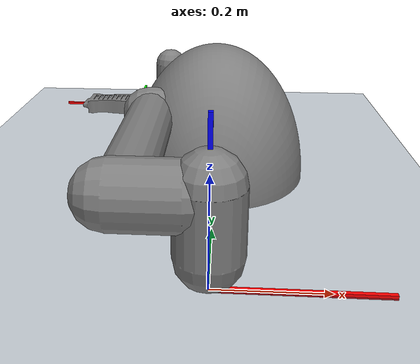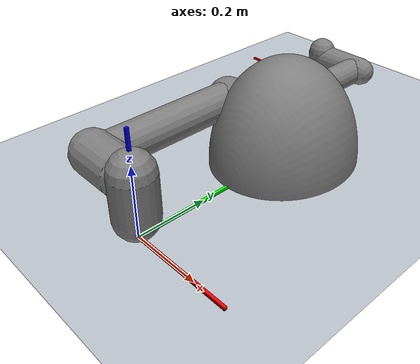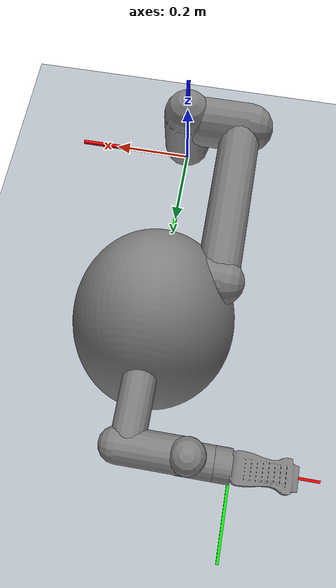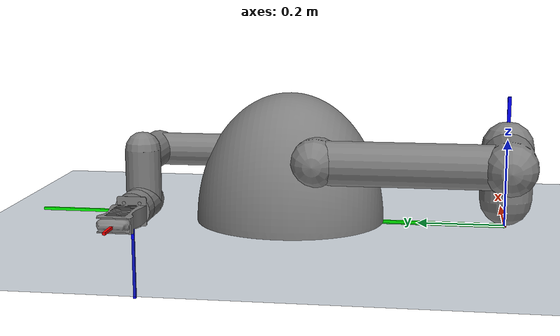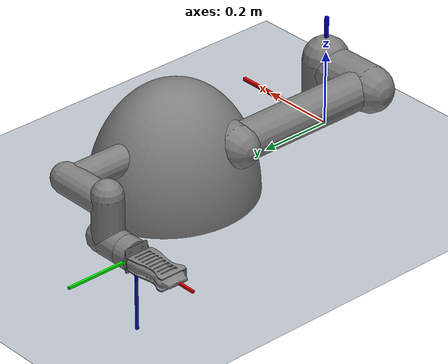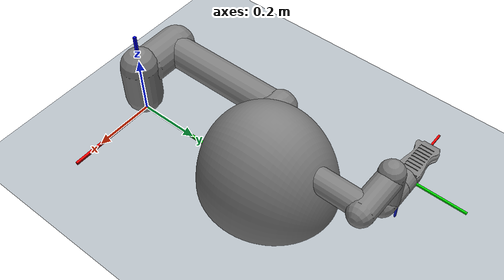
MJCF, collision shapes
<mujoco model="ur5e scene">
  <compiler angle="radian" meshdir="meshes/" autolimits="true"/>

  <option integrator="implicitfast" timestep="0.0005" gravity="0 0 0"/>

  <extension>
    <plugin plugin="mujoco.elasticity.solid"/>
  </extension>

  <statistic center="0.3 0 0.4" extent="0.8"/>

  <visual>
    <headlight diffuse="0.6 0.6 0.6" ambient="0.1 0.1 0.1" specular="0 0 0"/>
    <rgba haze="0.15 0.25 0.35 1"/>
    <global azimuth="120" elevation="-20"/>
  </visual>

  <asset>
    <texture type="skybox" builtin="gradient" rgb1="0.3 0.5 0.7" rgb2="0 0 0" width="512" height="3072"/>
    <texture type="2d" name="groundplane" builtin="checker" mark="edge" rgb1="0.2 0.3 0.4" rgb2="0.1 0.2 0.3"
      markrgb="0.8 0.8 0.8" width="300" height="300"/>
    <material name="groundplane" texture="groundplane" texuniform="true" texrepeat="5 5" reflectance="0.2"/>
  </asset>

  <default>
    <default class="ur5e">
      <material specular="0.5" shininess="0.25"/>
      <joint axis="0 1 0" range="-6.28319 6.28319" armature="0.1"/>
      <!-- position actuators -->
      <default class="size3">
        <default class="size3_limited">
          <joint range="-3.1415 3.1415" />
        </default>
      </default>
      <default class="size1">
        <general gainprm="500" biasprm="0 -500 -100" forcerange="-28 28"/>
      </default>
      <default class="visual">
        <geom type="mesh" contype="0" conaffinity="0" group="2"/>
      </default>
      <default class="collision">
        <geom type="capsule" group="3"/>
        <default class="eef_collision">
          <geom type="cylinder"/>
        </default>
        <default class="us_probe_collision">
          <geom type="mesh"/>
        </default>
      </default>
      <site size="0.001" rgba="0.5 0.5 0.5 0.3" group="4"/>
    </default>
  </default>

  <asset>
    <material class="ur5e" name="black" rgba="0.033 0.033 0.033 1"/>
    <material class="ur5e" name="jointgray" rgba="0.278 0.278 0.278 1"/>
    <material class="ur5e" name="linkgray" rgba="0.82 0.82 0.82 1"/>
    <material class="ur5e" name="urblue" rgba="0.49 0.678 0.8 1"/>

    <mesh file="ur5e/base_0.obj"/>
    <mesh file="ur5e/base_1.obj"/>
    <mesh file="ur5e/shoulder_0.obj"/>
    <mesh file="ur5e/shoulder_1.obj"/>
    <mesh file="ur5e/shoulder_2.obj"/>
    <mesh file="ur5e/upperarm_0.obj"/>
    <mesh file="ur5e/upperarm_1.obj"/>
    <mesh file="ur5e/upperarm_2.obj"/>
    <mesh file="ur5e/upperarm_3.obj"/>
    <mesh file="ur5e/forearm_0.obj"/>
    <mesh file="ur5e/forearm_1.obj"/>
    <mesh file="ur5e/forearm_2.obj"/>
    <mesh file="ur5e/forearm_3.obj"/>
    <mesh file="ur5e/wrist1_0.obj"/>
    <mesh file="ur5e/wrist1_1.obj"/>
    <mesh file="ur5e/wrist1_2.obj"/>
    <mesh file="ur5e/wrist2_0.obj"/>
    <mesh file="ur5e/wrist2_1.obj"/>
    <mesh file="ur5e/wrist2_2.obj"/>
    <mesh file="ur5e/wrist3.obj"/>
    <mesh file="ur5e/end_effector.stl"/>
    <mesh file="ur5e/HD3L15.stl" scale="0.001 0.001 0.001"/> <!--Scale from mm to m due to STL units-->
    <mesh file="ur5e/us_probe.stl" />
    <mesh file="phantom/phantom.stl" />
    <mesh name ="belly" file="phantom/belly.stl" scale= "1 1 1"/>
  </asset>

  <worldbody>
    <!-- Red X-axis -->
    <body name="base_frame_x" pos="0.15 0 0">
      <geom type="box" size="0.15 0.004 0.004" rgba="1 0 0 1" conaffinity="0" contype="0"/>
    </body>

    <!-- Green Y-axis -->
    <body name="base_frame_y" pos="0 0.15 0">
      <geom type="box" size="0.004 0.15 0.004" rgba="0 1 0 1" conaffinity="0" contype="0"/>
    </body>

    <!-- Blue Z-axis -->
    <body name="base_frame_z" pos="0 0 0.15">
      <geom type="box" size="0.004 0.004 0.15" rgba="0 0 1 1" conaffinity="0" contype="0"/>
    </body>
  </worldbody>

  <worldbody>
    <light pos="0 0 1.5" dir="0 0 -1" directional="true"/>
    <geom name="floor" size="0 0 0.05" type="plane" material="groundplane"/>
    <body name="base" quat="1 0 0 1" childclass="ur5e">
      <inertial mass="4.0" pos="0 0 0" diaginertia="0.00443333156 0.00443333156 0.0072"/>
      <geom mesh="base_0" material="black" class="visual"/>
      <geom mesh="base_1" material="jointgray" class="visual"/>
      <body name="shoulder_link" pos="0 0 0.163">
        <inertial mass="3.7" pos="0 0 0" diaginertia="0.0102675 0.0102675 0.00666"/>
        <joint name="shoulder_pan_joint" class="size3" axis="0 0 1"/>
        <geom mesh="shoulder_0" material="urblue" class="visual"/>
        <geom mesh="shoulder_1" material="black" class="visual"/>
        <geom mesh="shoulder_2" material="jointgray" class="visual"/>
        <geom class="collision" size="0.06 0.06" pos="0 0 -0.04"/>
        <body name="upper_arm_link" pos="0 0.138 0" quat="1 0 1 0">
          <inertial mass="8.393" pos="0 0 0.2125" diaginertia="0.133886 0.133886 0.0151074"/>
          <joint name="shoulder_lift_joint" class="size3"/>
          <geom mesh="upperarm_0" material="linkgray" class="visual"/>
          <geom mesh="upperarm_1" material="black" class="visual"/>
          <geom mesh="upperarm_2" material="jointgray" class="visual"/>
          <geom mesh="upperarm_3" material="urblue" class="visual"/>
          <geom class="collision" pos="0 -0.04 0" quat="1 1 0 0" size="0.06 0.06"/>
          <geom class="collision" size="0.05 0.2" pos="0 0 0.2"/>
          <body name="forearm_link" pos="0 -0.131 0.425">
            <inertial mass="2.275" pos="0 0 0.196" diaginertia="0.0311796 0.0311796 0.004095"/>
            <joint name="elbow_joint" class="size3_limited"/>
            <geom mesh="forearm_0" material="urblue" class="visual"/>
            <geom mesh="forearm_1" material="linkgray" class="visual"/>
            <geom mesh="forearm_2" material="black" class="visual"/>
            <geom mesh="forearm_3" material="jointgray" class="visual"/>
            <geom class="collision" pos="0 0.08 0" quat="1 1 0 0" size="0.055 0.06"/>
            <geom class="collision" size="0.038 0.19" pos="0 0 0.2"/>
            <body name="wrist_1_link" pos="0 0 0.392" quat="1 0 1 0">
              <inertial mass="1.219" pos="0 0.127 0" diaginertia="0.0025599 0.0025599 0.0021942"/>
              <joint name="wrist_1_joint" class="size1"/>
              <geom mesh="wrist1_0" material="black" class="visual"/>
              <geom mesh="wrist1_1" material="urblue" class="visual"/>
              <geom mesh="wrist1_2" material="jointgray" class="visual"/>
              <geom class="collision" pos="0 0.05 0" quat="1 1 0 0" size="0.04 0.07"/>
              <body name="wrist_2_link" pos="0 0.127 0">
                <inertial mass="1.219" pos="0 0 0.1" diaginertia="0.0025599 0.0025599 0.0021942"/>
                <joint name="wrist_2_joint" axis="0 0 1" class="size1"/>
                <geom mesh="wrist2_0" material="black" class="visual"/>
                <geom mesh="wrist2_1" material="urblue" class="visual"/>
                <geom mesh="wrist2_2" material="jointgray" class="visual"/>
                <geom class="collision" size="0.04 0.06" pos="0 0 0.04"/>
                <geom class="collision" pos="0 0.02 0.1" quat="1 1 0 0" size="0.04 0.04"/>
                <body name="wrist_3_link" pos="0 0 0.1">
                  <inertial mass="0.1889" pos="0 0.0771683 0" quat="1 0 0 1"
                    diaginertia="0.000132134 9.90863e-05 9.90863e-05"/>
                  <joint name="wrist_3_joint" class="size1"/>
                  <geom material="linkgray" mesh="wrist3" class="visual"/>
                  <geom class="eef_collision" pos="0 0.08 0" quat="1 1 0 0" size="0.04 0.02"/>
                  <body name="end_effector" pos="0 0.098 0" quat="1 0 0 0">
                    <inertial mass="0.325" pos="0 0.07675 0"/>
                    <geom material="jointgray" mesh="us_probe" class="visual"/>
                    <geom class="us_probe_collision" mesh="us_probe"/>

                      <site name="eef_site" pos="0 0 0" quat="1 0 0 1"/>
                      <site name="tcp_site" pos="0 0.15175 0" quat="0.707107 0 0 0.707107"/>

                      <!-- Red X-axis -->
                      <body name="eef_frame_x" quat="1 0 0 1" pos="0 0.1 0" >
                        <geom type="box" size="0.1 0.003 0.003" rgba="1 0 0 1" conaffinity="0" contype="0"/>
                      </body>
                      <!-- Green Y-axis -->
                      <body name="eef_frame_y" quat="1 0 0 1" pos="-0.1 0 0">
                        <geom type="box" size="0.003 0.1 0.003" rgba="0 1 0 1" conaffinity="0" contype="0"/>
                      </body>
                      <!-- Blue Z-axis -->
                      <body name="eef_frame_z" quat="1 0 0 1" pos="0 0 0.1">
                        <geom type="box" size="0.003 0.003 0.1" rgba="0 0 1 1" conaffinity="0" contype="0"/>
                      </body>
                  </body>
                </body>
              </body>
            </body>
          </body>
        </body>
      </body>
    </body>
  </worldbody>

  <actuator>
    <motor class="size3" name="shoulder_pan" joint="shoulder_pan_joint"/>
    <motor class="size3" name="shoulder_lift" joint="shoulder_lift_joint"/>
    <motor class="size3_limited" name="elbow" joint="elbow_joint"/>
    <motor class="size1" name="wrist_1" joint="wrist_1_joint"/>
    <motor class="size1" name="wrist_2" joint="wrist_2_joint"/>
    <motor class="size1" name="wrist_3" joint="wrist_3_joint"/>
  </actuator>

  <sensor>
    <force name="eef_force" site="eef_site" cutoff="50" />
    <torque name="eef_torque" site="eef_site" cutoff="10" />
  </sensor>

  <worldbody>

    <body name = "belly" pos = "0.0 0.5 0.0" >
      <geom name = "belly" type="mesh" mesh="belly"/>
    </body>

  </worldbody>
</mujoco>
